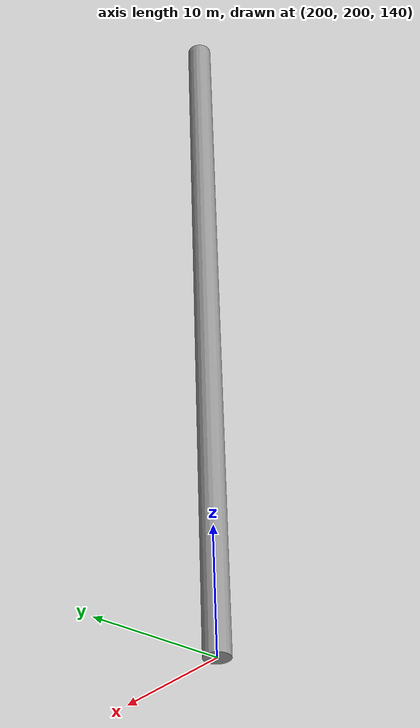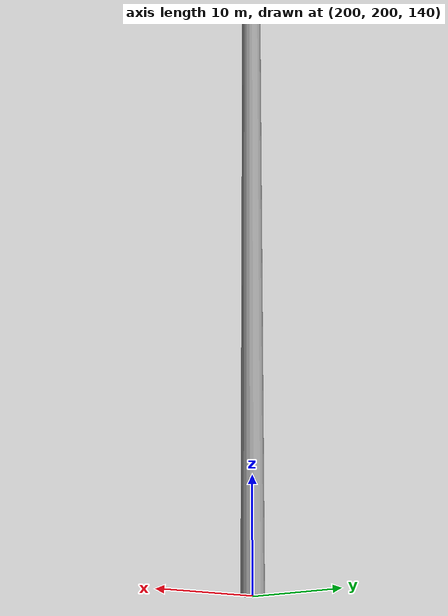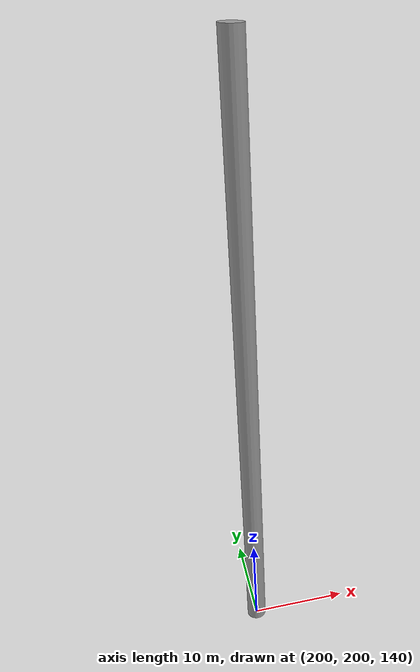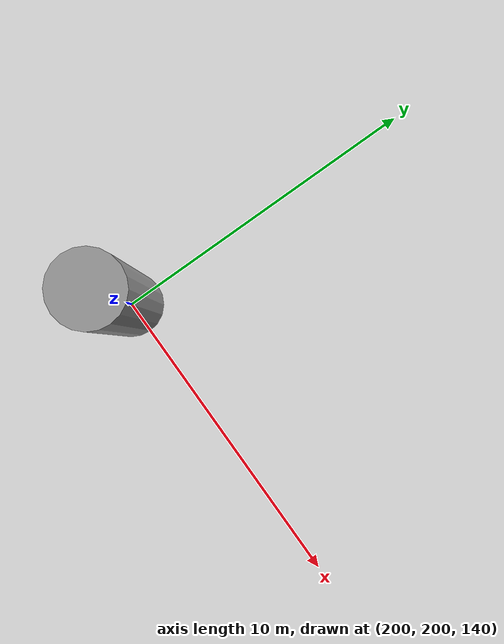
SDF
<?xml version='1.0'?>
<sdf version='1.7'><model name='stick_right'>
  <pose>200 200 200 0 0 0</pose>
  <link name="link">
      <gravity>0</gravity>
      <collision name="collision">
        <geometry>
          <mesh>
            <uri>model://stick_right/meshes/tinker.obj</uri>
          </mesh>
        </geometry>
      </collision>
      <visual name="visual">
        <geometry>
          <mesh>
            <uri>model://stick_right/meshes/tinker.obj</uri>
          </mesh>
        </geometry>
        <material>
          <script>
            <uri>file://media/materials/scripts/gazebo.material</uri>
            <name>Gazebo/Grey</name>
          </script>
        </material>
      </visual>
    </link>
</model>
</sdf>
